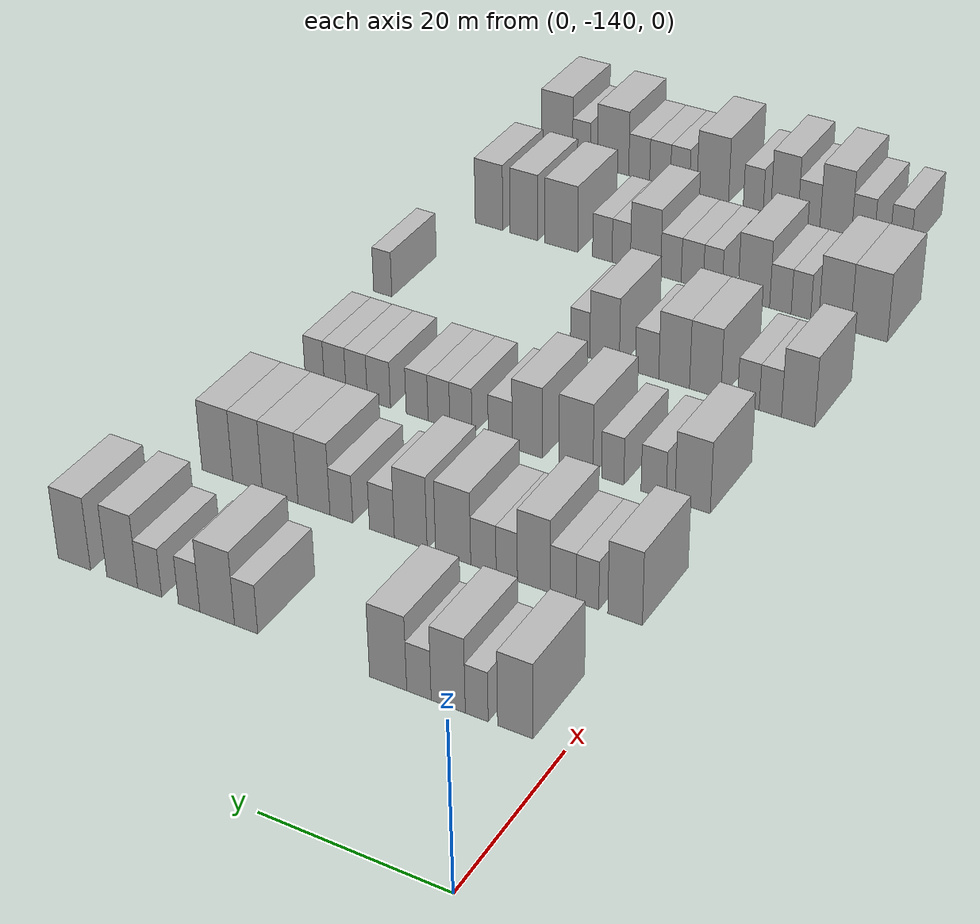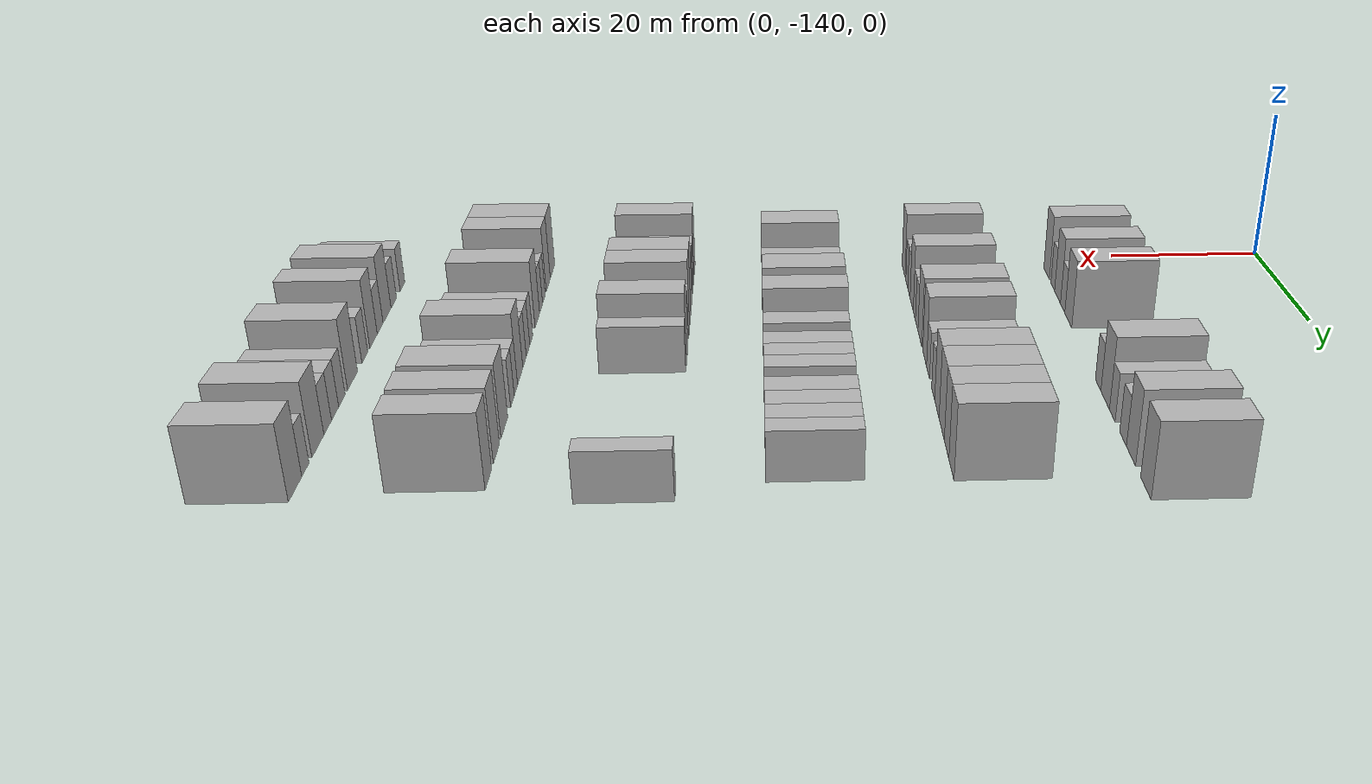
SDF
<sdf version="1.6">
 <world name="default">
  <model name="building_49">
   <static>1</static>
   <pose>25.0000 -134.7572 0 0.000000 0.000000 0.000000</pose>
   <link name="link">
    <pose>0 0 4.50 0 0 0</pose>
    <collision name="collision"><geometry><box><size>10.0000 3.7252 9.0000</size></box></geometry></collision>
    <visual name="visual">
     <cast_shadows>0</cast_shadows>
     <geometry><box><size>10.0000 3.7252 9.0000</size></box></geometry>
     <material>
      <script>
       <uri>model://HANNAS_wall/materials/scripts</uri>
       <uri>model://HANNAS_wall/materials/textures</uri>
       <name>vrc/HANNAS_wall</name>
      </script>
     </material>
    </visual>
   </link>
  </model>
  <model name="building_50">
   <static>1</static>
   <pose>25.0000 -130.6734 0 0.000000 0.000000 0.000000</pose>
   <link name="link">
    <pose>0 0 3.00 0 0 0</pose>
    <collision name="collision"><geometry><box><size>10.0000 2.4424 6.0000</size></box></geometry></collision>
    <visual name="visual">
     <cast_shadows>0</cast_shadows>
     <geometry><box><size>10.0000 2.4424 6.0000</size></box></geometry>
     <material>
      <script>
       <uri>model://HANNAS_wall/materials/scripts</uri>
       <uri>model://HANNAS_wall/materials/textures</uri>
       <name>vrc/HANNAS_wall</name>
      </script>
     </material>
    </visual>
   </link>
  </model>
  <model name="building_51">
   <static>1</static>
   <pose>25.0000 -127.6124 0 0.000000 0.000000 0.000000</pose>
   <link name="link">
    <pose>0 0 4.50 0 0 0</pose>
    <collision name="collision"><geometry><box><size>10.0000 3.6796 9.0000</size></box></geometry></collision>
    <visual name="visual">
     <cast_shadows>0</cast_shadows>
     <geometry><box><size>10.0000 3.6796 9.0000</size></box></geometry>
     <material>
      <script>
       <uri>model://HANNAS_wall/materials/scripts</uri>
       <uri>model://HANNAS_wall/materials/textures</uri>
       <name>vrc/HANNAS_wall</name>
      </script>
     </material>
    </visual>
   </link>
  </model>
  <model name="building_52">
   <static>1</static>
   <pose>25.0000 -124.4415 0 0.000000 0.000000 0.000000</pose>
   <link name="link">
    <pose>0 0 3.00 0 0 0</pose>
    <collision name="collision"><geometry><box><size>10.0000 2.6621 6.0000</size></box></geometry></collision>
    <visual name="visual">
     <cast_shadows>0</cast_shadows>
     <geometry><box><size>10.0000 2.6621 6.0000</size></box></geometry>
     <material>
      <script>
       <uri>model://HANNAS_wall/materials/scripts</uri>
       <uri>model://HANNAS_wall/materials/textures</uri>
       <name>vrc/HANNAS_wall</name>
      </script>
     </material>
    </visual>
   </link>
  </model>
  <model name="building_53">
   <static>1</static>
   <pose>25.0000 -121.0661 0 0.000000 0.000000 0.000000</pose>
   <link name="link">
    <pose>0 0 4.50 0 0 0</pose>
    <collision name="collision"><geometry><box><size>10.0000 4.0887 9.0000</size></box></geometry></collision>
    <visual name="visual">
     <cast_shadows>0</cast_shadows>
     <geometry><box><size>10.0000 4.0887 9.0000</size></box></geometry>
     <material>
      <script>
       <uri>model://HANNAS_wall/materials/scripts</uri>
       <uri>model://HANNAS_wall/materials/textures</uri>
       <name>vrc/HANNAS_wall</name>
      </script>
     </material>
    </visual>
   </link>
  </model>
  <model name="building_54">
   <static>1</static>
   <pose>25.0000 -104.9782 0 0.000000 0.000000 0.000000</pose>
   <link name="link">
    <pose>0 0 3.00 0 0 0</pose>
    <collision name="collision"><geometry><box><size>10.0000 2.6957 6.0000</size></box></geometry></collision>
    <visual name="visual">
     <cast_shadows>0</cast_shadows>
     <geometry><box><size>10.0000 2.6957 6.0000</size></box></geometry>
     <material>
      <script>
       <uri>model://HANNAS_wall/materials/scripts</uri>
       <uri>model://HANNAS_wall/materials/textures</uri>
       <name>vrc/HANNAS_wall</name>
      </script>
     </material>
    </visual>
   </link>
  </model>
  <model name="building_55">
   <static>1</static>
   <pose>25.0000 -101.5907 0 0.000000 0.000000 0.000000</pose>
   <link name="link">
    <pose>0 0 4.50 0 0 0</pose>
    <collision name="collision"><geometry><box><size>10.0000 4.0792 9.0000</size></box></geometry></collision>
    <visual name="visual">
     <cast_shadows>0</cast_shadows>
     <geometry><box><size>10.0000 4.0792 9.0000</size></box></geometry>
     <material>
      <script>
       <uri>model://HANNAS_wall/materials/scripts</uri>
       <uri>model://HANNAS_wall/materials/textures</uri>
       <name>vrc/HANNAS_wall</name>
      </script>
     </material>
    </visual>
   </link>
  </model>
  <model name="building_56">
   <static>1</static>
   <pose>25.0000 -98.2696 0 0.000000 0.000000 0.000000</pose>
   <link name="link">
    <pose>0 0 3.00 0 0 0</pose>
    <collision name="collision"><geometry><box><size>10.0000 2.5630 6.0000</size></box></geometry></collision>
    <visual name="visual">
     <cast_shadows>0</cast_shadows>
     <geometry><box><size>10.0000 2.5630 6.0000</size></box></geometry>
     <material>
      <script>
       <uri>model://HANNAS_wall/materials/scripts</uri>
       <uri>model://HANNAS_wall/materials/textures</uri>
       <name>vrc/HANNAS_wall</name>
      </script>
     </material>
    </visual>
   </link>
  </model>
  <model name="building_57">
   <static>1</static>
   <pose>25.0000 -93.5390 0 0.000000 0.000000 0.000000</pose>
   <link name="link">
    <pose>0 0 3.00 0 0 0</pose>
    <collision name="collision"><geometry><box><size>10.0000 2.8982 6.0000</size></box></geometry></collision>
    <visual name="visual">
     <cast_shadows>0</cast_shadows>
     <geometry><box><size>10.0000 2.8982 6.0000</size></box></geometry>
     <material>
      <script>
       <uri>model://HANNAS_wall/materials/scripts</uri>
       <uri>model://HANNAS_wall/materials/textures</uri>
       <name>vrc/HANNAS_wall</name>
      </script>
     </material>
    </visual>
   </link>
  </model>
  <model name="building_58">
   <static>1</static>
   <pose>25.0000 -90.2048 0 0.000000 0.000000 0.000000</pose>
   <link name="link">
    <pose>0 0 4.50 0 0 0</pose>
    <collision name="collision"><geometry><box><size>10.0000 3.7703 9.0000</size></box></geometry></collision>
    <visual name="visual">
     <cast_shadows>0</cast_shadows>
     <geometry><box><size>10.0000 3.7703 9.0000</size></box></geometry>
     <material>
      <script>
       <uri>model://HANNAS_wall/materials/scripts</uri>
       <uri>model://HANNAS_wall/materials/textures</uri>
       <name>vrc/HANNAS_wall</name>
      </script>
     </material>
    </visual>
   </link>
  </model>
  <model name="building_59">
   <static>1</static>
   <pose>25.0000 -84.3037 0 0.000000 0.000000 0.000000</pose>
   <link name="link">
    <pose>0 0 4.50 0 0 0</pose>
    <collision name="collision"><geometry><box><size>10.0000 4.0318 9.0000</size></box></geometry></collision>
    <visual name="visual">
     <cast_shadows>0</cast_shadows>
     <geometry><box><size>10.0000 4.0318 9.0000</size></box></geometry>
     <material>
      <script>
       <uri>model://HANNAS_wall/materials/scripts</uri>
       <uri>model://HANNAS_wall/materials/textures</uri>
       <name>vrc/HANNAS_wall</name>
      </script>
     </material>
    </visual>
   </link>
  </model>
  <model name="building_221">
   <static>1</static>
   <pose>44.0000 -136.2531 0 0.000000 0.000000 0.000000</pose>
   <link name="link">
    <pose>0 0 4.50 0 0 0</pose>
    <collision name="collision"><geometry><box><size>10.0000 3.7663 9.0000</size></box></geometry></collision>
    <visual name="visual">
     <cast_shadows>0</cast_shadows>
     <geometry><box><size>10.0000 3.7663 9.0000</size></box></geometry>
     <material>
      <script>
       <uri>model://HANNAS_wall/materials/scripts</uri>
       <uri>model://HANNAS_wall/materials/textures</uri>
       <name>vrc/HANNAS_wall</name>
      </script>
     </material>
    </visual>
   </link>
  </model>
  <model name="building_222">
   <static>1</static>
   <pose>44.0000 -132.1150 0 0.000000 0.000000 0.000000</pose>
   <link name="link">
    <pose>0 0 3.00 0 0 0</pose>
    <collision name="collision"><geometry><box><size>10.0000 2.5099 6.0000</size></box></geometry></collision>
    <visual name="visual">
     <cast_shadows>0</cast_shadows>
     <geometry><box><size>10.0000 2.5099 6.0000</size></box></geometry>
     <material>
      <script>
       <uri>model://HANNAS_wall/materials/scripts</uri>
       <uri>model://HANNAS_wall/materials/textures</uri>
       <name>vrc/HANNAS_wall</name>
      </script>
     </material>
    </visual>
   </link>
  </model>
  <model name="building_223">
   <static>1</static>
   <pose>44.0000 -129.4392 0 0.000000 0.000000 0.000000</pose>
   <link name="link">
    <pose>0 0 3.00 0 0 0</pose>
    <collision name="collision"><geometry><box><size>10.0000 2.8418 6.0000</size></box></geometry></collision>
    <visual name="visual">
     <cast_shadows>0</cast_shadows>
     <geometry><box><size>10.0000 2.8418 6.0000</size></box></geometry>
     <material>
      <script>
       <uri>model://HANNAS_wall/materials/scripts</uri>
       <uri>model://HANNAS_wall/materials/textures</uri>
       <name>vrc/HANNAS_wall</name>
      </script>
     </material>
    </visual>
   </link>
  </model>
  <model name="building_224">
   <static>1</static>
   <pose>44.0000 -126.1531 0 0.000000 0.000000 0.000000</pose>
   <link name="link">
    <pose>0 0 4.50 0 0 0</pose>
    <collision name="collision"><geometry><box><size>10.0000 3.7302 9.0000</size></box></geometry></collision>
    <visual name="visual">
     <cast_shadows>0</cast_shadows>
     <geometry><box><size>10.0000 3.7302 9.0000</size></box></geometry>
     <material>
      <script>
       <uri>model://HANNAS_wall/materials/scripts</uri>
       <uri>model://HANNAS_wall/materials/textures</uri>
       <name>vrc/HANNAS_wall</name>
      </script>
     </material>
    </visual>
   </link>
  </model>
  <model name="building_225">
   <static>1</static>
   <pose>44.0000 -123.0766 0 0.000000 0.000000 0.000000</pose>
   <link name="link">
    <pose>0 0 3.00 0 0 0</pose>
    <collision name="collision"><geometry><box><size>10.0000 2.4228 6.0000</size></box></geometry></collision>
    <visual name="visual">
     <cast_shadows>0</cast_shadows>
     <geometry><box><size>10.0000 2.4228 6.0000</size></box></geometry>
     <material>
      <script>
       <uri>model://HANNAS_wall/materials/scripts</uri>
       <uri>model://HANNAS_wall/materials/textures</uri>
       <name>vrc/HANNAS_wall</name>
      </script>
     </material>
    </visual>
   </link>
  </model>
  <model name="building_226">
   <static>1</static>
   <pose>44.0000 -120.4090 0 0.000000 0.000000 0.000000</pose>
   <link name="link">
    <pose>0 0 3.00 0 0 0</pose>
    <collision name="collision"><geometry><box><size>10.0000 2.9124 6.0000</size></box></geometry></collision>
    <visual name="visual">
     <cast_shadows>0</cast_shadows>
     <geometry><box><size>10.0000 2.9124 6.0000</size></box></geometry>
     <material>
      <script>
       <uri>model://HANNAS_wall/materials/scripts</uri>
       <uri>model://HANNAS_wall/materials/textures</uri>
       <name>vrc/HANNAS_wall</name>
      </script>
     </material>
    </visual>
   </link>
  </model>
  <model name="building_227">
   <static>1</static>
   <pose>44.0000 -116.9177 0 0.000000 0.000000 0.000000</pose>
   <link name="link">
    <pose>0 0 4.50 0 0 0</pose>
    <collision name="collision"><geometry><box><size>10.0000 4.0702 9.0000</size></box></geometry></collision>
    <visual name="visual">
     <cast_shadows>0</cast_shadows>
     <geometry><box><size>10.0000 4.0702 9.0000</size></box></geometry>
     <material>
      <script>
       <uri>model://HANNAS_wall/materials/scripts</uri>
       <uri>model://HANNAS_wall/materials/textures</uri>
       <name>vrc/HANNAS_wall</name>
      </script>
     </material>
    </visual>
   </link>
  </model>
  <model name="building_228">
   <static>1</static>
   <pose>44.0000 -111.9504 0 0.000000 0.000000 0.000000</pose>
   <link name="link">
    <pose>0 0 4.50 0 0 0</pose>
    <collision name="collision"><geometry><box><size>10.0000 3.8644 9.0000</size></box></geometry></collision>
    <visual name="visual">
     <cast_shadows>0</cast_shadows>
     <geometry><box><size>10.0000 3.8644 9.0000</size></box></geometry>
     <material>
      <script>
       <uri>model://HANNAS_wall/materials/scripts</uri>
       <uri>model://HANNAS_wall/materials/textures</uri>
       <name>vrc/HANNAS_wall</name>
      </script>
     </material>
    </visual>
   </link>
  </model>
  <model name="building_229">
   <static>1</static>
   <pose>44.0000 -108.5389 0 0.000000 0.000000 0.000000</pose>
   <link name="link">
    <pose>0 0 3.00 0 0 0</pose>
    <collision name="collision"><geometry><box><size>10.0000 2.9584 6.0000</size></box></geometry></collision>
    <visual name="visual">
     <cast_shadows>0</cast_shadows>
     <geometry><box><size>10.0000 2.9584 6.0000</size></box></geometry>
     <material>
      <script>
       <uri>model://HANNAS_wall/materials/scripts</uri>
       <uri>model://HANNAS_wall/materials/textures</uri>
       <name>vrc/HANNAS_wall</name>
      </script>
     </material>
    </visual>
   </link>
  </model>
  <model name="building_230">
   <static>1</static>
   <pose>44.0000 -103.6762 0 0.000000 0.000000 0.000000</pose>
   <link name="link">
    <pose>0 0 3.00 0 0 0</pose>
    <collision name="collision"><geometry><box><size>10.0000 2.7670 6.0000</size></box></geometry></collision>
    <visual name="visual">
     <cast_shadows>0</cast_shadows>
     <geometry><box><size>10.0000 2.7670 6.0000</size></box></geometry>
     <material>
      <script>
       <uri>model://HANNAS_wall/materials/scripts</uri>
       <uri>model://HANNAS_wall/materials/textures</uri>
       <name>vrc/HANNAS_wall</name>
      </script>
     </material>
    </visual>
   </link>
  </model>
  <model name="building_231">
   <static>1</static>
   <pose>44.0000 -100.3355 0 0.000000 0.000000 0.000000</pose>
   <link name="link">
    <pose>0 0 4.50 0 0 0</pose>
    <collision name="collision"><geometry><box><size>10.0000 3.9145 9.0000</size></box></geometry></collision>
    <visual name="visual">
     <cast_shadows>0</cast_shadows>
     <geometry><box><size>10.0000 3.9145 9.0000</size></box></geometry>
     <material>
      <script>
       <uri>model://HANNAS_wall/materials/scripts</uri>
       <uri>model://HANNAS_wall/materials/textures</uri>
       <name>vrc/HANNAS_wall</name>
      </script>
     </material>
    </visual>
   </link>
  </model>
  <model name="building_232">
   <static>1</static>
   <pose>44.0000 -96.1695 0 0.000000 0.000000 0.000000</pose>
   <link name="link">
    <pose>0 0 4.50 0 0 0</pose>
    <collision name="collision"><geometry><box><size>10.0000 4.4174 9.0000</size></box></geometry></collision>
    <visual name="visual">
     <cast_shadows>0</cast_shadows>
     <geometry><box><size>10.0000 4.4174 9.0000</size></box></geometry>
     <material>
      <script>
       <uri>model://HANNAS_wall/materials/scripts</uri>
       <uri>model://HANNAS_wall/materials/textures</uri>
       <name>vrc/HANNAS_wall</name>
      </script>
     </material>
    </visual>
   </link>
  </model>
  <model name="building_233">
   <static>1</static>
   <pose>44.0000 -92.1059 0 0.000000 0.000000 0.000000</pose>
   <link name="link">
    <pose>0 0 4.50 0 0 0</pose>
    <collision name="collision"><geometry><box><size>10.0000 3.7098 9.0000</size></box></geometry></collision>
    <visual name="visual">
     <cast_shadows>0</cast_shadows>
     <geometry><box><size>10.0000 3.7098 9.0000</size></box></geometry>
     <material>
      <script>
       <uri>model://HANNAS_wall/materials/scripts</uri>
       <uri>model://HANNAS_wall/materials/textures</uri>
       <name>vrc/HANNAS_wall</name>
      </script>
     </material>
    </visual>
   </link>
  </model>
  <model name="building_234">
   <static>1</static>
   <pose>44.0000 -88.3024 0 0.000000 0.000000 0.000000</pose>
   <link name="link">
    <pose>0 0 4.50 0 0 0</pose>
    <collision name="collision"><geometry><box><size>10.0000 3.8973 9.0000</size></box></geometry></collision>
    <visual name="visual">
     <cast_shadows>0</cast_shadows>
     <geometry><box><size>10.0000 3.8973 9.0000</size></box></geometry>
     <material>
      <script>
       <uri>model://HANNAS_wall/materials/scripts</uri>
       <uri>model://HANNAS_wall/materials/textures</uri>
       <name>vrc/HANNAS_wall</name>
      </script>
     </material>
    </visual>
   </link>
  </model>
  <model name="building_389">
   <static>1</static>
   <pose>63.0000 -134.2206 0 0.000000 0.000000 0.000000</pose>
   <link name="link">
    <pose>0 0 4.50 0 0 0</pose>
    <collision name="collision"><geometry><box><size>10.0000 4.0402 9.0000</size></box></geometry></collision>
    <visual name="visual">
     <cast_shadows>0</cast_shadows>
     <geometry><box><size>10.0000 4.0402 9.0000</size></box></geometry>
     <material>
      <script>
       <uri>model://HANNAS_wall/materials/scripts</uri>
       <uri>model://HANNAS_wall/materials/textures</uri>
       <name>vrc/HANNAS_wall</name>
      </script>
     </material>
    </visual>
   </link>
  </model>
  <model name="building_390">
   <static>1</static>
   <pose>63.0000 -129.7439 0 0.000000 0.000000 0.000000</pose>
   <link name="link">
    <pose>0 0 3.00 0 0 0</pose>
    <collision name="collision"><geometry><box><size>10.0000 2.9131 6.0000</size></box></geometry></collision>
    <visual name="visual">
     <cast_shadows>0</cast_shadows>
     <geometry><box><size>10.0000 2.9131 6.0000</size></box></geometry>
     <material>
      <script>
       <uri>model://HANNAS_wall/materials/scripts</uri>
       <uri>model://HANNAS_wall/materials/textures</uri>
       <name>vrc/HANNAS_wall</name>
      </script>
     </material>
    </visual>
   </link>
  </model>
  <model name="building_391">
   <static>1</static>
   <pose>63.0000 -124.9750 0 0.000000 0.000000 0.000000</pose>
   <link name="link">
    <pose>0 0 3.00 0 0 0</pose>
    <collision name="collision"><geometry><box><size>10.0000 2.6247 6.0000</size></box></geometry></collision>
    <visual name="visual">
     <cast_shadows>0</cast_shadows>
     <geometry><box><size>10.0000 2.6247 6.0000</size></box></geometry>
     <material>
      <script>
       <uri>model://HANNAS_wall/materials/scripts</uri>
       <uri>model://HANNAS_wall/materials/textures</uri>
       <name>vrc/HANNAS_wall</name>
      </script>
     </material>
    </visual>
   </link>
  </model>
  <model name="building_392">
   <static>1</static>
   <pose>63.0000 -120.6424 0 0.000000 0.000000 0.000000</pose>
   <link name="link">
    <pose>0 0 4.50 0 0 0</pose>
    <collision name="collision"><geometry><box><size>10.0000 4.0406 9.0000</size></box></geometry></collision>
    <visual name="visual">
     <cast_shadows>0</cast_shadows>
     <geometry><box><size>10.0000 4.0406 9.0000</size></box></geometry>
     <material>
      <script>
       <uri>model://HANNAS_wall/materials/scripts</uri>
       <uri>model://HANNAS_wall/materials/textures</uri>
       <name>vrc/HANNAS_wall</name>
      </script>
     </material>
    </visual>
   </link>
  </model>
  <model name="building_393">
   <static>1</static>
   <pose>63.0000 -114.7920 0 0.000000 0.000000 0.000000</pose>
   <link name="link">
    <pose>0 0 4.50 0 0 0</pose>
    <collision name="collision"><geometry><box><size>10.0000 3.6602 9.0000</size></box></geometry></collision>
    <visual name="visual">
     <cast_shadows>0</cast_shadows>
     <geometry><box><size>10.0000 3.6602 9.0000</size></box></geometry>
     <material>
      <script>
       <uri>model://HANNAS_wall/materials/scripts</uri>
       <uri>model://HANNAS_wall/materials/textures</uri>
       <name>vrc/HANNAS_wall</name>
      </script>
     </material>
    </visual>
   </link>
  </model>
  <model name="building_394">
   <static>1</static>
   <pose>63.0000 -111.5016 0 0.000000 0.000000 0.000000</pose>
   <link name="link">
    <pose>0 0 3.00 0 0 0</pose>
    <collision name="collision"><geometry><box><size>10.0000 2.9205 6.0000</size></box></geometry></collision>
    <visual name="visual">
     <cast_shadows>0</cast_shadows>
     <geometry><box><size>10.0000 2.9205 6.0000</size></box></geometry>
     <material>
      <script>
       <uri>model://HANNAS_wall/materials/scripts</uri>
       <uri>model://HANNAS_wall/materials/textures</uri>
       <name>vrc/HANNAS_wall</name>
      </script>
     </material>
    </visual>
   </link>
  </model>
  <model name="building_395">
   <static>1</static>
   <pose>63.0000 -106.6603 0 0.000000 0.000000 0.000000</pose>
   <link name="link">
    <pose>0 0 3.00 0 0 0</pose>
    <collision name="collision"><geometry><box><size>10.0000 2.7621 6.0000</size></box></geometry></collision>
    <visual name="visual">
     <cast_shadows>0</cast_shadows>
     <geometry><box><size>10.0000 2.7621 6.0000</size></box></geometry>
     <material>
      <script>
       <uri>model://HANNAS_wall/materials/scripts</uri>
       <uri>model://HANNAS_wall/materials/textures</uri>
       <name>vrc/HANNAS_wall</name>
      </script>
     </material>
    </visual>
   </link>
  </model>
  <model name="building_396">
   <static>1</static>
   <pose>63.0000 -103.9150 0 0.000000 0.000000 0.000000</pose>
   <link name="link">
    <pose>0 0 3.00 0 0 0</pose>
    <collision name="collision"><geometry><box><size>10.0000 2.7284 6.0000</size></box></geometry></collision>
    <visual name="visual">
     <cast_shadows>0</cast_shadows>
     <geometry><box><size>10.0000 2.7284 6.0000</size></box></geometry>
     <material>
      <script>
       <uri>model://HANNAS_wall/materials/scripts</uri>
       <uri>model://HANNAS_wall/materials/textures</uri>
       <name>vrc/HANNAS_wall</name>
      </script>
     </material>
    </visual>
   </link>
  </model>
  <model name="building_397">
   <static>1</static>
   <pose>63.0000 -101.1715 0 0.000000 0.000000 0.000000</pose>
   <link name="link">
    <pose>0 0 3.00 0 0 0</pose>
    <collision name="collision"><geometry><box><size>10.0000 2.7586 6.0000</size></box></geometry></collision>
    <visual name="visual">
     <cast_shadows>0</cast_shadows>
     <geometry><box><size>10.0000 2.7586 6.0000</size></box></geometry>
     <material>
      <script>
       <uri>model://HANNAS_wall/materials/scripts</uri>
       <uri>model://HANNAS_wall/materials/textures</uri>
       <name>vrc/HANNAS_wall</name>
      </script>
     </material>
    </visual>
   </link>
  </model>
  <model name="building_398">
   <static>1</static>
   <pose>63.0000 -96.3095 0 0.000000 0.000000 0.000000</pose>
   <link name="link">
    <pose>0 0 3.00 0 0 0</pose>
    <collision name="collision"><geometry><box><size>10.0000 2.9655 6.0000</size></box></geometry></collision>
    <visual name="visual">
     <cast_shadows>0</cast_shadows>
     <geometry><box><size>10.0000 2.9655 6.0000</size></box></geometry>
     <material>
      <script>
       <uri>model://HANNAS_wall/materials/scripts</uri>
       <uri>model://HANNAS_wall/materials/textures</uri>
       <name>vrc/HANNAS_wall</name>
      </script>
     </material>
    </visual>
   </link>
  </model>
  <model name="building_399">
   <static>1</static>
   <pose>63.0000 -93.4590 0 0.000000 0.000000 0.000000</pose>
   <link name="link">
    <pose>0 0 3.00 0 0 0</pose>
    <collision name="collision"><geometry><box><size>10.0000 2.7355 6.0000</size></box></geometry></collision>
    <visual name="visual">
     <cast_shadows>0</cast_shadows>
     <geometry><box><size>10.0000 2.7355 6.0000</size></box></geometry>
     <material>
      <script>
       <uri>model://HANNAS_wall/materials/scripts</uri>
       <uri>model://HANNAS_wall/materials/textures</uri>
       <name>vrc/HANNAS_wall</name>
      </script>
     </material>
    </visual>
   </link>
  </model>
  <model name="building_400">
   <static>1</static>
   <pose>63.0000 -90.6819 0 0.000000 0.000000 0.000000</pose>
   <link name="link">
    <pose>0 0 3.00 0 0 0</pose>
    <collision name="collision"><geometry><box><size>10.0000 2.8187 6.0000</size></box></geometry></collision>
    <visual name="visual">
     <cast_shadows>0</cast_shadows>
     <geometry><box><size>10.0000 2.8187 6.0000</size></box></geometry>
     <material>
      <script>
       <uri>model://HANNAS_wall/materials/scripts</uri>
       <uri>model://HANNAS_wall/materials/textures</uri>
       <name>vrc/HANNAS_wall</name>
      </script>
     </material>
    </visual>
   </link>
  </model>
  <model name="building_401">
   <static>1</static>
   <pose>63.0000 -88.0284 0 0.000000 0.000000 0.000000</pose>
   <link name="link">
    <pose>0 0 3.00 0 0 0</pose>
    <collision name="collision"><geometry><box><size>10.0000 2.4884 6.0000</size></box></geometry></collision>
    <visual name="visual">
     <cast_shadows>0</cast_shadows>
     <geometry><box><size>10.0000 2.4884 6.0000</size></box></geometry>
     <material>
      <script>
       <uri>model://HANNAS_wall/materials/scripts</uri>
       <uri>model://HANNAS_wall/materials/textures</uri>
       <name>vrc/HANNAS_wall</name>
      </script>
     </material>
    </visual>
   </link>
  </model>
  <model name="building_561">
   <static>1</static>
   <pose>82.0000 -137.5523 0 0.000000 0.000000 0.000000</pose>
   <link name="link">
    <pose>0 0 4.50 0 0 0</pose>
    <collision name="collision"><geometry><box><size>10.0000 3.9003 9.0000</size></box></geometry></collision>
    <visual name="visual">
     <cast_shadows>0</cast_shadows>
     <geometry><box><size>10.0000 3.9003 9.0000</size></box></geometry>
     <material>
      <script>
       <uri>model://HANNAS_wall/materials/scripts</uri>
       <uri>model://HANNAS_wall/materials/textures</uri>
       <name>vrc/HANNAS_wall</name>
      </script>
     </material>
    </visual>
   </link>
  </model>
  <model name="building_562">
   <static>1</static>
   <pose>82.0000 -134.2772 0 0.000000 0.000000 0.000000</pose>
   <link name="link">
    <pose>0 0 3.00 0 0 0</pose>
    <collision name="collision"><geometry><box><size>10.0000 2.6499 6.0000</size></box></geometry></collision>
    <visual name="visual">
     <cast_shadows>0</cast_shadows>
     <geometry><box><size>10.0000 2.6499 6.0000</size></box></geometry>
     <material>
      <script>
       <uri>model://HANNAS_wall/materials/scripts</uri>
       <uri>model://HANNAS_wall/materials/textures</uri>
       <name>vrc/HANNAS_wall</name>
      </script>
     </material>
    </visual>
   </link>
  </model>
  <model name="building_563">
   <static>1</static>
   <pose>82.0000 -131.6539 0 0.000000 0.000000 0.000000</pose>
   <link name="link">
    <pose>0 0 3.00 0 0 0</pose>
    <collision name="collision"><geometry><box><size>10.0000 2.5965 6.0000</size></box></geometry></collision>
    <visual name="visual">
     <cast_shadows>0</cast_shadows>
     <geometry><box><size>10.0000 2.5965 6.0000</size></box></geometry>
     <material>
      <script>
       <uri>model://HANNAS_wall/materials/scripts</uri>
       <uri>model://HANNAS_wall/materials/textures</uri>
       <name>vrc/HANNAS_wall</name>
      </script>
     </material>
    </visual>
   </link>
  </model>
  <model name="building_564">
   <static>1</static>
   <pose>82.0000 -126.4538 0 0.000000 0.000000 0.000000</pose>
   <link name="link">
    <pose>0 0 4.50 0 0 0</pose>
    <collision name="collision"><geometry><box><size>10.0000 3.8037 9.0000</size></box></geometry></collision>
    <visual name="visual">
     <cast_shadows>0</cast_shadows>
     <geometry><box><size>10.0000 3.8037 9.0000</size></box></geometry>
     <material>
      <script>
       <uri>model://HANNAS_wall/materials/scripts</uri>
       <uri>model://HANNAS_wall/materials/textures</uri>
       <name>vrc/HANNAS_wall</name>
      </script>
     </material>
    </visual>
   </link>
  </model>
  <model name="building_565">
   <static>1</static>
   <pose>82.0000 -122.6636 0 0.000000 0.000000 0.000000</pose>
   <link name="link">
    <pose>0 0 4.50 0 0 0</pose>
    <collision name="collision"><geometry><box><size>10.0000 3.7767 9.0000</size></box></geometry></collision>
    <visual name="visual">
     <cast_shadows>0</cast_shadows>
     <geometry><box><size>10.0000 3.7767 9.0000</size></box></geometry>
     <material>
      <script>
       <uri>model://HANNAS_wall/materials/scripts</uri>
       <uri>model://HANNAS_wall/materials/textures</uri>
       <name>vrc/HANNAS_wall</name>
      </script>
     </material>
    </visual>
   </link>
  </model>
  <model name="building_566">
   <static>1</static>
   <pose>82.0000 -119.3235 0 0.000000 0.000000 0.000000</pose>
   <link name="link">
    <pose>0 0 3.00 0 0 0</pose>
    <collision name="collision"><geometry><box><size>10.0000 2.9035 6.0000</size></box></geometry></collision>
    <visual name="visual">
     <cast_shadows>0</cast_shadows>
     <geometry><box><size>10.0000 2.9035 6.0000</size></box></geometry>
     <material>
      <script>
       <uri>model://HANNAS_wall/materials/scripts</uri>
       <uri>model://HANNAS_wall/materials/textures</uri>
       <name>vrc/HANNAS_wall</name>
      </script>
     </material>
    </visual>
   </link>
  </model>
  <model name="building_567">
   <static>1</static>
   <pose>82.0000 -114.0208 0 0.000000 0.000000 0.000000</pose>
   <link name="link">
    <pose>0 0 4.50 0 0 0</pose>
    <collision name="collision"><geometry><box><size>10.0000 3.7018 9.0000</size></box></geometry></collision>
    <visual name="visual">
     <cast_shadows>0</cast_shadows>
     <geometry><box><size>10.0000 3.7018 9.0000</size></box></geometry>
     <material>
      <script>
       <uri>model://HANNAS_wall/materials/scripts</uri>
       <uri>model://HANNAS_wall/materials/textures</uri>
       <name>vrc/HANNAS_wall</name>
      </script>
     </material>
    </visual>
   </link>
  </model>
  <model name="building_568">
   <static>1</static>
   <pose>82.0000 -110.9379 0 0.000000 0.000000 0.000000</pose>
   <link name="link">
    <pose>0 0 3.00 0 0 0</pose>
    <collision name="collision"><geometry><box><size>10.0000 2.4640 6.0000</size></box></geometry></collision>
    <visual name="visual">
     <cast_shadows>0</cast_shadows>
     <geometry><box><size>10.0000 2.4640 6.0000</size></box></geometry>
     <material>
      <script>
       <uri>model://HANNAS_wall/materials/scripts</uri>
       <uri>model://HANNAS_wall/materials/textures</uri>
       <name>vrc/HANNAS_wall</name>
      </script>
     </material>
    </visual>
   </link>
  </model>
  <model name="building_569">
   <static>1</static>
   <pose>82.0000 -84.9747 0 0.000000 0.000000 0.000000</pose>
   <link name="link">
    <pose>0 0 3.00 0 0 0</pose>
    <collision name="collision"><geometry><box><size>10.0000 2.4875 6.0000</size></box></geometry></collision>
    <visual name="visual">
     <cast_shadows>0</cast_shadows>
     <geometry><box><size>10.0000 2.4875 6.0000</size></box></geometry>
     <material>
      <script>
       <uri>model://HANNAS_wall/materials/scripts</uri>
       <uri>model://HANNAS_wall/materials/textures</uri>
       <name>vrc/HANNAS_wall</name>
      </script>
     </material>
    </visual>
   </link>
  </model>
  <model name="building_737">
   <static>1</static>
   <pose>101.0000 -137.8190 0 0.000000 0.000000 0.000000</pose>
   <link name="link">
    <pose>0 0 4.50 0 0 0</pose>
    <collision name="collision"><geometry><box><size>10.0000 4.4867 9.0000</size></box></geometry></collision>
    <visual name="visual">
     <cast_shadows>0</cast_shadows>
     <geometry><box><size>10.0000 4.4867 9.0000</size></box></geometry>
     <material>
      <script>
       <uri>model://HANNAS_wall/materials/scripts</uri>
       <uri>model://HANNAS_wall/materials/textures</uri>
       <name>vrc/HANNAS_wall</name>
      </script>
     </material>
    </visual>
   </link>
  </model>
  <model name="building_738">
   <static>1</static>
   <pose>101.0000 -133.5980 0 0.000000 0.000000 0.000000</pose>
   <link name="link">
    <pose>0 0 4.50 0 0 0</pose>
    <collision name="collision"><geometry><box><size>10.0000 3.9554 9.0000</size></box></geometry></collision>
    <visual name="visual">
     <cast_shadows>0</cast_shadows>
     <geometry><box><size>10.0000 3.9554 9.0000</size></box></geometry>
     <material>
      <script>
       <uri>model://HANNAS_wall/materials/scripts</uri>
       <uri>model://HANNAS_wall/materials/textures</uri>
       <name>vrc/HANNAS_wall</name>
      </script>
     </material>
    </visual>
   </link>
  </model>
  <model name="building_739">
   <static>1</static>
   <pose>101.0000 -129.4044 0 0.000000 0.000000 0.000000</pose>
   <link name="link">
    <pose>0 0 3.00 0 0 0</pose>
    <collision name="collision"><geometry><box><size>10.0000 2.4317 6.0000</size></box></geometry></collision>
    <visual name="visual">
     <cast_shadows>0</cast_shadows>
     <geometry><box><size>10.0000 2.4317 6.0000</size></box></geometry>
     <material>
      <script>
       <uri>model://HANNAS_wall/materials/scripts</uri>
       <uri>model://HANNAS_wall/materials/textures</uri>
       <name>vrc/HANNAS_wall</name>
      </script>
     </material>
    </visual>
   </link>
  </model>
  <model name="building_740">
   <static>1</static>
   <pose>101.0000 -126.8346 0 0.000000 0.000000 0.000000</pose>
   <link name="link">
    <pose>0 0 3.00 0 0 0</pose>
    <collision name="collision"><geometry><box><size>10.0000 2.7079 6.0000</size></box></geometry></collision>
    <visual name="visual">
     <cast_shadows>0</cast_shadows>
     <geometry><box><size>10.0000 2.7079 6.0000</size></box></geometry>
     <material>
      <script>
       <uri>model://HANNAS_wall/materials/scripts</uri>
       <uri>model://HANNAS_wall/materials/textures</uri>
       <name>vrc/HANNAS_wall</name>
      </script>
     </material>
    </visual>
   </link>
  </model>
  <model name="building_741">
   <static>1</static>
   <pose>101.0000 -123.4601 0 0.000000 0.000000 0.000000</pose>
   <link name="link">
    <pose>0 0 4.50 0 0 0</pose>
    <collision name="collision"><geometry><box><size>10.0000 4.0411 9.0000</size></box></geometry></collision>
    <visual name="visual">
     <cast_shadows>0</cast_shadows>
     <geometry><box><size>10.0000 4.0411 9.0000</size></box></geometry>
     <material>
      <script>
       <uri>model://HANNAS_wall/materials/scripts</uri>
       <uri>model://HANNAS_wall/materials/textures</uri>
       <name>vrc/HANNAS_wall</name>
      </script>
     </material>
    </visual>
   </link>
  </model>
  <model name="building_742">
   <static>1</static>
   <pose>101.0000 -118.2212 0 0.000000 0.000000 0.000000</pose>
   <link name="link">
    <pose>0 0 3.00 0 0 0</pose>
    <collision name="collision"><geometry><box><size>10.0000 2.4369 6.0000</size></box></geometry></collision>
    <visual name="visual">
     <cast_shadows>0</cast_shadows>
     <geometry><box><size>10.0000 2.4369 6.0000</size></box></geometry>
     <material>
      <script>
       <uri>model://HANNAS_wall/materials/scripts</uri>
       <uri>model://HANNAS_wall/materials/textures</uri>
       <name>vrc/HANNAS_wall</name>
      </script>
     </material>
    </visual>
   </link>
  </model>
  <model name="building_743">
   <static>1</static>
   <pose>101.0000 -115.5748 0 0.000000 0.000000 0.000000</pose>
   <link name="link">
    <pose>0 0 3.00 0 0 0</pose>
    <collision name="collision"><geometry><box><size>10.0000 2.8559 6.0000</size></box></geometry></collision>
    <visual name="visual">
     <cast_shadows>0</cast_shadows>
     <geometry><box><size>10.0000 2.8559 6.0000</size></box></geometry>
     <material>
      <script>
       <uri>model://HANNAS_wall/materials/scripts</uri>
       <uri>model://HANNAS_wall/materials/textures</uri>
       <name>vrc/HANNAS_wall</name>
      </script>
     </material>
    </visual>
   </link>
  </model>
  <model name="building_744">
   <static>1</static>
   <pose>101.0000 -112.7987 0 0.000000 0.000000 0.000000</pose>
   <link name="link">
    <pose>0 0 3.00 0 0 0</pose>
    <collision name="collision"><geometry><box><size>10.0000 2.6962 6.0000</size></box></geometry></collision>
    <visual name="visual">
     <cast_shadows>0</cast_shadows>
     <geometry><box><size>10.0000 2.6962 6.0000</size></box></geometry>
     <material>
      <script>
       <uri>model://HANNAS_wall/materials/scripts</uri>
       <uri>model://HANNAS_wall/materials/textures</uri>
       <name>vrc/HANNAS_wall</name>
      </script>
     </material>
    </visual>
   </link>
  </model>
  <model name="building_745">
   <static>1</static>
   <pose>101.0000 -109.4590 0 0.000000 0.000000 0.000000</pose>
   <link name="link">
    <pose>0 0 4.50 0 0 0</pose>
    <collision name="collision"><geometry><box><size>10.0000 3.9832 9.0000</size></box></geometry></collision>
    <visual name="visual">
     <cast_shadows>0</cast_shadows>
     <geometry><box><size>10.0000 3.9832 9.0000</size></box></geometry>
     <material>
      <script>
       <uri>model://HANNAS_wall/materials/scripts</uri>
       <uri>model://HANNAS_wall/materials/textures</uri>
       <name>vrc/HANNAS_wall</name>
      </script>
     </material>
    </visual>
   </link>
  </model>
  <model name="building_746">
   <static>1</static>
   <pose>101.0000 -106.2532 0 0.000000 0.000000 0.000000</pose>
   <link name="link">
    <pose>0 0 3.00 0 0 0</pose>
    <collision name="collision"><geometry><box><size>10.0000 2.4285 6.0000</size></box></geometry></collision>
    <visual name="visual">
     <cast_shadows>0</cast_shadows>
     <geometry><box><size>10.0000 2.4285 6.0000</size></box></geometry>
     <material>
      <script>
       <uri>model://HANNAS_wall/materials/scripts</uri>
       <uri>model://HANNAS_wall/materials/textures</uri>
       <name>vrc/HANNAS_wall</name>
      </script>
     </material>
    </visual>
   </link>
  </model>
  <model name="building_747">
   <static>1</static>
   <pose>101.0000 -103.7365 0 0.000000 0.000000 0.000000</pose>
   <link name="link">
    <pose>0 0 3.00 0 0 0</pose>
    <collision name="collision"><geometry><box><size>10.0000 2.6050 6.0000</size></box></geometry></collision>
    <visual name="visual">
     <cast_shadows>0</cast_shadows>
     <geometry><box><size>10.0000 2.6050 6.0000</size></box></geometry>
     <material>
      <script>
       <uri>model://HANNAS_wall/materials/scripts</uri>
       <uri>model://HANNAS_wall/materials/textures</uri>
       <name>vrc/HANNAS_wall</name>
      </script>
     </material>
    </visual>
   </link>
  </model>
  <model name="building_748">
   <static>1</static>
   <pose>101.0000 -98.2075 0 0.000000 0.000000 0.000000</pose>
   <link name="link">
    <pose>0 0 4.50 0 0 0</pose>
    <collision name="collision"><geometry><box><size>10.0000 4.4528 9.0000</size></box></geometry></collision>
    <visual name="visual">
     <cast_shadows>0</cast_shadows>
     <geometry><box><size>10.0000 4.4528 9.0000</size></box></geometry>
     <material>
      <script>
       <uri>model://HANNAS_wall/materials/scripts</uri>
       <uri>model://HANNAS_wall/materials/textures</uri>
       <name>vrc/HANNAS_wall</name>
      </script>
     </material>
    </visual>
   </link>
  </model>
  <model name="building_749">
   <static>1</static>
   <pose>101.0000 -93.0810 0 0.000000 0.000000 0.000000</pose>
   <link name="link">
    <pose>0 0 4.50 0 0 0</pose>
    <collision name="collision"><geometry><box><size>10.0000 3.8003 9.0000</size></box></geometry></collision>
    <visual name="visual">
     <cast_shadows>0</cast_shadows>
     <geometry><box><size>10.0000 3.8003 9.0000</size></box></geometry>
     <material>
      <script>
       <uri>model://HANNAS_wall/materials/scripts</uri>
       <uri>model://HANNAS_wall/materials/textures</uri>
       <name>vrc/HANNAS_wall</name>
      </script>
     </material>
    </visual>
   </link>
  </model>
  <model name="building_750">
   <static>1</static>
   <pose>101.0000 -88.2622 0 0.000000 0.000000 0.000000</pose>
   <link name="link">
    <pose>0 0 4.50 0 0 0</pose>
    <collision name="collision"><geometry><box><size>10.0000 3.8372 9.0000</size></box></geometry></collision>
    <visual name="visual">
     <cast_shadows>0</cast_shadows>
     <geometry><box><size>10.0000 3.8372 9.0000</size></box></geometry>
     <material>
      <script>
       <uri>model://HANNAS_wall/materials/scripts</uri>
       <uri>model://HANNAS_wall/materials/textures</uri>
       <name>vrc/HANNAS_wall</name>
      </script>
     </material>
    </visual>
   </link>
  </model>
  <model name="building_916">
   <static>1</static>
   <pose>120.0000 -133.8506 0 0.000000 0.000000 0.000000</pose>
   <link name="link">
    <pose>0 0 3.00 0 0 0</pose>
    <collision name="collision"><geometry><box><size>10.0000 2.6898 6.0000</size></box></geometry></collision>
    <visual name="visual">
     <cast_shadows>0</cast_shadows>
     <geometry><box><size>10.0000 2.6898 6.0000</size></box></geometry>
     <material>
      <script>
       <uri>model://HANNAS_wall/materials/scripts</uri>
       <uri>model://HANNAS_wall/materials/textures</uri>
       <name>vrc/HANNAS_wall</name>
      </script>
     </material>
    </visual>
   </link>
  </model>
  <model name="building_917">
   <static>1</static>
   <pose>120.0000 -129.0399 0 0.000000 0.000000 0.000000</pose>
   <link name="link">
    <pose>0 0 3.00 0 0 0</pose>
    <collision name="collision"><geometry><box><size>10.0000 2.9314 6.0000</size></box></geometry></collision>
    <visual name="visual">
     <cast_shadows>0</cast_shadows>
     <geometry><box><size>10.0000 2.9314 6.0000</size></box></geometry>
     <material>
      <script>
       <uri>model://HANNAS_wall/materials/scripts</uri>
       <uri>model://HANNAS_wall/materials/textures</uri>
       <name>vrc/HANNAS_wall</name>
      </script>
     </material>
    </visual>
   </link>
  </model>
  <model name="building_918">
   <static>1</static>
   <pose>120.0000 -125.5078 0 0.000000 0.000000 0.000000</pose>
   <link name="link">
    <pose>0 0 4.50 0 0 0</pose>
    <collision name="collision"><geometry><box><size>10.0000 4.1328 9.0000</size></box></geometry></collision>
    <visual name="visual">
     <cast_shadows>0</cast_shadows>
     <geometry><box><size>10.0000 4.1328 9.0000</size></box></geometry>
     <material>
      <script>
       <uri>model://HANNAS_wall/materials/scripts</uri>
       <uri>model://HANNAS_wall/materials/textures</uri>
       <name>vrc/HANNAS_wall</name>
      </script>
     </material>
    </visual>
   </link>
  </model>
  <model name="building_919">
   <static>1</static>
   <pose>120.0000 -121.9850 0 0.000000 0.000000 0.000000</pose>
   <link name="link">
    <pose>0 0 3.00 0 0 0</pose>
    <collision name="collision"><geometry><box><size>10.0000 2.9128 6.0000</size></box></geometry></collision>
    <visual name="visual">
     <cast_shadows>0</cast_shadows>
     <geometry><box><size>10.0000 2.9128 6.0000</size></box></geometry>
     <material>
      <script>
       <uri>model://HANNAS_wall/materials/scripts</uri>
       <uri>model://HANNAS_wall/materials/textures</uri>
       <name>vrc/HANNAS_wall</name>
      </script>
     </material>
    </visual>
   </link>
  </model>
  <model name="building_920">
   <static>1</static>
   <pose>120.0000 -118.7179 0 0.000000 0.000000 0.000000</pose>
   <link name="link">
    <pose>0 0 4.50 0 0 0</pose>
    <collision name="collision"><geometry><box><size>10.0000 3.6215 9.0000</size></box></geometry></collision>
    <visual name="visual">
     <cast_shadows>0</cast_shadows>
     <geometry><box><size>10.0000 3.6215 9.0000</size></box></geometry>
     <material>
      <script>
       <uri>model://HANNAS_wall/materials/scripts</uri>
       <uri>model://HANNAS_wall/materials/textures</uri>
       <name>vrc/HANNAS_wall</name>
      </script>
     </material>
    </visual>
   </link>
  </model>
  <model name="building_921">
   <static>1</static>
   <pose>120.0000 -114.5689 0 0.000000 0.000000 0.000000</pose>
   <link name="link">
    <pose>0 0 3.00 0 0 0</pose>
    <collision name="collision"><geometry><box><size>10.0000 2.6765 6.0000</size></box></geometry></collision>
    <visual name="visual">
     <cast_shadows>0</cast_shadows>
     <geometry><box><size>10.0000 2.6765 6.0000</size></box></geometry>
     <material>
      <script>
       <uri>model://HANNAS_wall/materials/scripts</uri>
       <uri>model://HANNAS_wall/materials/textures</uri>
       <name>vrc/HANNAS_wall</name>
      </script>
     </material>
    </visual>
   </link>
  </model>
  <model name="building_922">
   <static>1</static>
   <pose>120.0000 -109.0685 0 0.000000 0.000000 0.000000</pose>
   <link name="link">
    <pose>0 0 4.50 0 0 0</pose>
    <collision name="collision"><geometry><box><size>10.0000 4.3242 9.0000</size></box></geometry></collision>
    <visual name="visual">
     <cast_shadows>0</cast_shadows>
     <geometry><box><size>10.0000 4.3242 9.0000</size></box></geometry>
     <material>
      <script>
       <uri>model://HANNAS_wall/materials/scripts</uri>
       <uri>model://HANNAS_wall/materials/textures</uri>
       <name>vrc/HANNAS_wall</name>
      </script>
     </material>
    </visual>
   </link>
  </model>
  <model name="building_923">
   <static>1</static>
   <pose>120.0000 -104.5846 0 0.000000 0.000000 0.000000</pose>
   <link name="link">
    <pose>0 0 3.00 0 0 0</pose>
    <collision name="collision"><geometry><box><size>10.0000 2.6436 6.0000</size></box></geometry></collision>
    <visual name="visual">
     <cast_shadows>0</cast_shadows>
     <geometry><box><size>10.0000 2.6436 6.0000</size></box></geometry>
     <material>
      <script>
       <uri>model://HANNAS_wall/materials/scripts</uri>
       <uri>model://HANNAS_wall/materials/textures</uri>
       <name>vrc/HANNAS_wall</name>
      </script>
     </material>
    </visual>
   </link>
  </model>
  <model name="building_924">
   <static>1</static>
   <pose>120.0000 -101.8244 0 0.000000 0.000000 0.000000</pose>
   <link name="link">
    <pose>0 0 3.00 0 0 0</pose>
    <collision name="collision"><geometry><box><size>10.0000 2.8768 6.0000</size></box></geometry></collision>
    <visual name="visual">
     <cast_shadows>0</cast_shadows>
     <geometry><box><size>10.0000 2.8768 6.0000</size></box></geometry>
     <material>
      <script>
       <uri>model://HANNAS_wall/materials/scripts</uri>
       <uri>model://HANNAS_wall/materials/textures</uri>
       <name>vrc/HANNAS_wall</name>
      </script>
     </material>
    </visual>
   </link>
  </model>
  <model name="building_925">
   <static>1</static>
   <pose>120.0000 -98.9199 0 0.000000 0.000000 0.000000</pose>
   <link name="link">
    <pose>0 0 3.00 0 0 0</pose>
    <collision name="collision"><geometry><box><size>10.0000 2.9322 6.0000</size></box></geometry></collision>
    <visual name="visual">
     <cast_shadows>0</cast_shadows>
     <geometry><box><size>10.0000 2.9322 6.0000</size></box></geometry>
     <material>
      <script>
       <uri>model://HANNAS_wall/materials/scripts</uri>
       <uri>model://HANNAS_wall/materials/textures</uri>
       <name>vrc/HANNAS_wall</name>
      </script>
     </material>
    </visual>
   </link>
  </model>
  <model name="building_926">
   <static>1</static>
   <pose>120.0000 -95.2370 0 0.000000 0.000000 0.000000</pose>
   <link name="link">
    <pose>0 0 4.50 0 0 0</pose>
    <collision name="collision"><geometry><box><size>10.0000 4.4335 9.0000</size></box></geometry></collision>
    <visual name="visual">
     <cast_shadows>0</cast_shadows>
     <geometry><box><size>10.0000 4.4335 9.0000</size></box></geometry>
     <material>
      <script>
       <uri>model://HANNAS_wall/materials/scripts</uri>
       <uri>model://HANNAS_wall/materials/textures</uri>
       <name>vrc/HANNAS_wall</name>
      </script>
     </material>
    </visual>
   </link>
  </model>
  <model name="building_927">
   <static>1</static>
   <pose>120.0000 -90.7582 0 0.000000 0.000000 0.000000</pose>
   <link name="link">
    <pose>0 0 3.00 0 0 0</pose>
    <collision name="collision"><geometry><box><size>10.0000 2.5243 6.0000</size></box></geometry></collision>
    <visual name="visual">
     <cast_shadows>0</cast_shadows>
     <geometry><box><size>10.0000 2.5243 6.0000</size></box></geometry>
     <material>
      <script>
       <uri>model://HANNAS_wall/materials/scripts</uri>
       <uri>model://HANNAS_wall/materials/textures</uri>
       <name>vrc/HANNAS_wall</name>
      </script>
     </material>
    </visual>
   </link>
  </model>
  <model name="building_928">
   <static>1</static>
   <pose>120.0000 -87.2552 0 0.000000 0.000000 0.000000</pose>
   <link name="link">
    <pose>0 0 4.50 0 0 0</pose>
    <collision name="collision"><geometry><box><size>10.0000 4.4817 9.0000</size></box></geometry></collision>
    <visual name="visual">
     <cast_shadows>0</cast_shadows>
     <geometry><box><size>10.0000 4.4817 9.0000</size></box></geometry>
     <material>
      <script>
       <uri>model://HANNAS_wall/materials/scripts</uri>
       <uri>model://HANNAS_wall/materials/textures</uri>
       <name>vrc/HANNAS_wall</name>
      </script>
     </material>
    </visual>
   </link>
  </model>
 </world>
</sdf>
